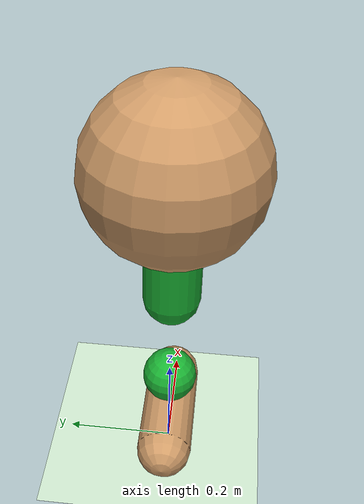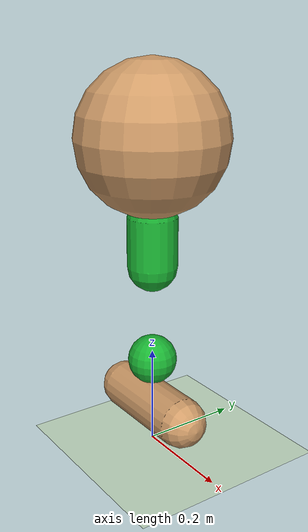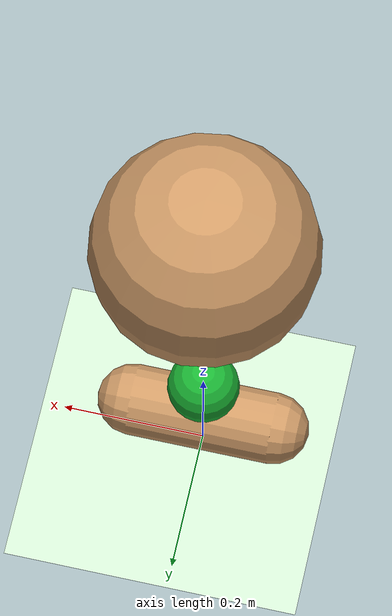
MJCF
<mujoco model="SLIP">
  <compiler inertiafromgeom="true" angle="degree" />

  <default>
    <joint limited='true' damping='1' armature='1' />
    <geom contype='7' conaffinity='7' condim='1' rgba='0.8 0.6 .4 1' margin="0.001" solref=".005 1" solimp=".8 .8 .01" material="geom" />
    <motor ctrlrange='-.4 .4' ctrllimited='true' />
  </default>

  <option timestep="0.001" integrator="Euler" gravity="0 0 -9.806"/>
  <asset>
    <texture type="skybox" builtin="gradient" width="100" height="100" rgb1="1 1 1" rgb2="0 0 0" />
    <texture name="texgeom" type="cube" builtin="flat" mark="cross" width="127" height="1278" rgb1="0.8 0.6 0.4" rgb2="0.8 0.6 0.4" markrgb="1 1 1" random="0.01" />
    <texture name="texplane" type="2d" builtin="checker" rgb1="0 0 0" rgb2="0.8 0.8 0.8" width="100" height="100" />
    <material name='MatPlane' texture="texplane" shininess="1" texrepeat="60 60" specular="1"  reflectance="0.5" />
    <material name='geom' texture="texgeom" texuniform="true" />
  </asset>
  <worldbody>
    <light directional="true" cutoff="100" exponent="1" diffuse="1 1 1" specular=".1 .1 .1" pos="0 0 1.3" dir="-0 0 -1.3" />
    <geom name='floor' contype='256' conaffinity='256' material="MatPlane" pos='0 0 0' size='40 40 40' type='plane' rgba='0.8 0.9 0.8 1' condim='3' friction="2.0" />
    <body name="torso" pos="0 0 0.6325"><!-- TORSO -->
      <joint name='rootx' type='slide' axis='1 0 0' pos='0 0 0' limited='false' damping='0' armature='0' stiffness='0' />
      <joint name='rootz' type='slide' axis='0 0 1' pos='0 0 0' limited='false' damping='0' armature='0' stiffness='0' ref='0.5125'/>
      <joint name='rot' type='hinge' axis='0 1 0' pos='0 0 0' limited='false' damping='0' armature='0' stiffness='0' />
      <geom name="torso_geom" type="sphere" size="0.15" friction="0.9"/>
      <body name="left_leg" pos="0 0 -0.15"><!-- LEFT LEG -->
          <joint name='left_leg_tau' type = 'hinge' axis='0 1 0' pos='0 0 0.15' limited='true' range='-30 30' damping='0' armature='0.0' stiffness='0' />
	        <joint name='left_leg_motor' type='slide' axis='0 0 1' pos='0 0 0' limited='true' range='-0.4 0.0' damping='10' armature='0.0' stiffness='0'/>
	        <geom name="left_leg_geom"  type="capsule" contype='2' conaffinity='2' fromto="0 0 0 0 0 -0.1" size="0.05" friction="0.9" rgba="0.1 0.7 0.2 1" />
	           <body name="left_toe" pos="0 0 -0.3"><!-- TOE -->
	    	     <joint name='left_spring' type='slide' axis='0 0 1' pos='0 0 0' limited='true' range='-0.1 0.3' damping='100' armature='0' stiffness='10000'/>
	           <geom name="left_toe_geom"  contype='2' conaffinity='2' type="sphere" size="0.05" friction="0.1" rgba="0.1 0.7 0.2 1"/>
                <body name="foot" pos="0 0 -0.1"> <!-- FOOT -->
            		<joint name="foot_joint" type="hinge" pos="0 0 0" axis="0 -1 0" range="-20 20" armature='0' stiffness='0' damping='1'/>
            		<geom name="foot_geom" type="capsule" fromto="-0.1 0 0 0.1 0 0" size="0.05" friction="2.0" condim='4'/>
          			<site name="foot_heel" type="sphere" pos="-0.10 0 -0.02" size="0.015"/>
          			<site name="foot_toe" type="sphere" pos="0.10 0 -0.02" size="0.015"/>
          	</body>
        </body>
      </body>

    </body>
  </worldbody>

  <actuator>
    <!-- LEFT LEG ACTUATORS -->
    <motor joint="left_leg_tau" ctrlrange="-50.0 50.0" ctrllimited="true" />
    <motor joint="left_leg_motor" ctrlrange="-500.0 500.0" ctrllimited="true" />
    <motor joint="foot_joint" ctrlrange="-200.0 200.0" ctrllimited="true" />
    <!-- RIGHT LEG ACTUATORS -->
  </actuator>
</mujoco>
